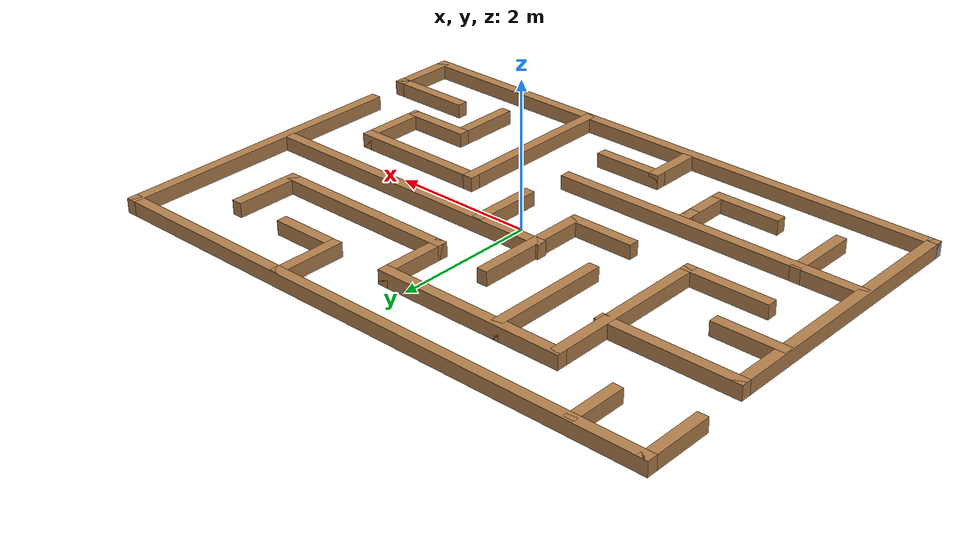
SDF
<?xml version='1.0'?>
<sdf version='1.6'>
  <model name='maze2'>
    <pose frame=''>0.034016 -0.067773 0 0 -0 0</pose>
    <link name='Wall_0'>
      <collision name='Wall_0_Collision'>
        <geometry>
          <box>
            <size>4 0.15 0.20</size>
          </box>
        </geometry>
        <pose frame=''>0 0 0 0 -0 0</pose>
      </collision>
      <visual name='Wall_0_Visual'>
        <pose frame=''>0 0 0 0 -0 0</pose>
        <geometry>
          <box>
            <size>4 0.15 0.20</size>
          </box>
        </geometry>
        <material>
          <script>
            <uri>file://media/materials/scripts/gazebo.material</uri>
            <name>Gazebo/Wood</name>
          </script>
          <ambient>1 1 1 1</ambient>
        </material>
        <meta>
          <layer>0</layer>
        </meta>
      </visual>
      <pose frame=''>-4.01511 -0.824503 0 0 -0 -1.5708</pose>
    </link>
    <link name='Wall_1'>
      <collision name='Wall_1_Collision'>
        <geometry>
          <box>
            <size>0.25 0.15 0.20</size>
          </box>
        </geometry>
        <pose frame=''>0 0 0 0 -0 0</pose>
      </collision>
      <visual name='Wall_1_Visual'>
        <pose frame=''>0 0 0 0 -0 0</pose>
        <geometry>
          <box>
            <size>0.25 0.15 0.20</size>
          </box>
        </geometry>
        <material>
          <script>
            <uri>file://media/materials/scripts/gazebo.material</uri>
            <name>Gazebo/Grey</name>
          </script>
          <ambient>1 1 1 1</ambient>
        </material>
        <meta>
          <layer>0</layer>
        </meta>
      </visual>
      <pose frame=''>-4.01511 -2.7995 0 0 -0 -1.5708</pose>
    </link>
    <link name='Wall_10'>
      <collision name='Wall_10_Collision'>
        <geometry>
          <box>
            <size>0.80 0.15 0.20</size>
          </box>
        </geometry>
        <pose frame=''>0 0 0 0 -0 0</pose>
      </collision>
      <visual name='Wall_10_Visual'>
        <pose frame=''>0 0 0 0 -0 0</pose>
        <geometry>
          <box>
            <size>0.80 0.15 0.20</size>
          </box>
        </geometry>
        <material>
          <script>
            <uri>file://media/materials/scripts/gazebo.material</uri>
            <name>Gazebo/Wood</name>
          </script>
          <ambient>1 1 1 1</ambient>
        </material>
        <meta>
          <layer>0</layer>
        </meta>
      </visual>
      <pose frame=''>-3.11779 2.4245 0 0 -0 -1.5708</pose>
    </link>
    <link name='Wall_12'>
      <collision name='Wall_12_Collision'>
        <geometry>
          <box>
            <size>1 0.15 0.20</size>
          </box>
        </geometry>
        <pose frame=''>0 0 0 0 -0 0</pose>
      </collision>
      <visual name='Wall_12_Visual'>
        <pose frame=''>0 0 0 0 -0 0</pose>
        <geometry>
          <box>
            <size>1 0.15 0.20</size>
          </box>
        </geometry>
        <material>
          <script>
            <uri>file://media/materials/scripts/gazebo.material</uri>
            <name>Gazebo/Wood</name>
          </script>
          <ambient>1 1 1 1</ambient>
        </material>
        <meta>
          <layer>0</layer>
        </meta>
      </visual>
      <pose frame=''>-3.5749 0.294433 0 0 -0 0</pose>
    </link>
    <link name='Wall_131'>
      <collision name='Wall_131_Collision'>
        <geometry>
          <box>
            <size>0.25 0.15 0.20</size>
          </box>
        </geometry>
        <pose frame=''>0 0 0 0 -0 0</pose>
      </collision>
      <visual name='Wall_131_Visual'>
        <pose frame=''>0 0 0 0 -0 0</pose>
        <geometry>
          <box>
            <size>0.25 0.15 0.20</size>
          </box>
        </geometry>
        <material>
          <script>
            <uri>file://media/materials/scripts/gazebo.material</uri>
            <name>Gazebo/Wood</name>
          </script>
          <ambient>1 1 1 1</ambient>
        </material>
        <meta>
          <layer>0</layer>
        </meta>
      </visual>
      <pose frame=''>-1.4161 -1.47376 0 0 -0 1.5708</pose>
    </link>
    <link name='Wall_133'>
      <collision name='Wall_133_Collision'>
        <geometry>
          <box>
            <size>0.75 0.15 0.20</size>
          </box>
        </geometry>
        <pose frame=''>0 0 0 0 -0 0</pose>
      </collision>
      <visual name='Wall_133_Visual'>
        <pose frame=''>0 0 0 0 -0 0</pose>
        <geometry>
          <box>
            <size>0.75 0.15 0.20</size>
          </box>
        </geometry>
        <material>
          <script>
            <uri>file://media/materials/scripts/gazebo.material</uri>
            <name>Gazebo/Wood</name>
          </script>
          <ambient>1 1 1 1</ambient>
        </material>
        <meta>
          <layer>0</layer>
        </meta>
      </visual>
      <pose frame=''>-0.425845 -2.40855 0 0 -0 -1.5708</pose>
    </link>
    <link name='Wall_135'>
      <collision name='Wall_135_Collision'>
        <geometry>
          <box>
            <size>1 0.15 0.20</size>
          </box>
        </geometry>
        <pose frame=''>0 0 0 0 -0 0</pose>
      </collision>
      <visual name='Wall_135_Visual'>
        <pose frame=''>0 0 0 0 -0 0</pose>
        <geometry>
          <box>
            <size>1 0.15 0.20</size>
          </box>
        </geometry>
        <material>
          <script>
            <uri>file://media/materials/scripts/gazebo.material</uri>
            <name>Gazebo/Wood</name>
          </script>
          <ambient>1 1 1 1</ambient>
        </material>
        <meta>
          <layer>0</layer>
        </meta>
      </visual>
      <pose frame=''>-0.000845 -2.10855 0 0 -0 0</pose>
    </link>
    <link name='Wall_137'>
      <collision name='Wall_137_Collision'>
        <geometry>
          <box>
            <size>2.5 0.15 0.20</size>
          </box>
        </geometry>
        <pose frame=''>0 0 0 0 -0 0</pose>
      </collision>
      <visual name='Wall_137_Visual'>
        <pose frame=''>0 0 0 0 -0 0</pose>
        <geometry>
          <box>
            <size>2.5 0.15 0.20</size>
          </box>
        </geometry>
        <material>
          <script>
            <uri>file://media/materials/scripts/gazebo.material</uri>
            <name>Gazebo/Wood</name>
          </script>
          <ambient>1 1 1 1</ambient>
        </material>
        <meta>
          <layer>0</layer>
        </meta>
      </visual>
      <pose frame=''>1.32316 -1.65621 0 0 -0 -1.5708</pose>
    </link>
    <link name='Wall_139'>
      <collision name='Wall_139_Collision'>
        <geometry>
          <box>
            <size>2 0.15 0.20</size>
          </box>
        </geometry>
        <pose frame=''>0 0 0 0 -0 0</pose>
      </collision>
      <visual name='Wall_139_Visual'>
        <pose frame=''>0 0 0 0 -0 0</pose>
        <geometry>
          <box>
            <size>2 0.15 0.20</size>
          </box>
        </geometry>
        <material>
          <script>
            <uri>file://media/materials/scripts/gazebo.material</uri>
            <name>Gazebo/Wood</name>
          </script>
          <ambient>1 1 1 1</ambient>
        </material>
        <meta>
          <layer>0</layer>
        </meta>
      </visual>
      <pose frame=''>2.24816 -0.481213 0 0 -0 0</pose>
    </link>
    <link name='Wall_14'>
      <collision name='Wall_14_Collision'>
        <geometry>
          <box>
            <size>2 0.15 0.20</size>
          </box>
        </geometry>
        <pose frame=''>0 0 0 0 -0 0</pose>
      </collision>
      <visual name='Wall_14_Visual'>
        <pose frame=''>0 0 0 0 -0 0</pose>
        <geometry>
          <box>
            <size>2 0.15 0.20</size>
          </box>
        </geometry>
        <material>
          <script>
            <uri>file://media/materials/scripts/gazebo.material</uri>
            <name>Gazebo/Wood</name>
          </script>
          <ambient>1 1 1 1</ambient>
        </material>
        <meta>
          <layer>0</layer>
        </meta>
      </visual>
      <pose frame=''>-3.09011 1.1005 0 0 -0 0</pose>
    </link>
    <link name='Wall_140'>
      <collision name='Wall_140_Collision'>
        <geometry>
          <box>
            <size>1 0.15 0.20</size>
          </box>
        </geometry>
        <pose frame=''>0 0 0 0 -0 0</pose>
      </collision>
      <visual name='Wall_140_Visual'>
        <pose frame=''>0 0 0 0 -0 0</pose>
        <geometry>
          <box>
            <size>1 0.15 0.20</size>
          </box>
        </geometry>
        <material>
          <script>
            <uri>file://media/materials/scripts/gazebo.material</uri>
            <name>Gazebo/Wood</name>
          </script>
          <ambient>1 1 1 1</ambient>
        </material>
        <meta>
          <layer>0</layer>
        </meta>
      </visual>
      <pose frame=''>3.17316 -0.906213 0 0 -0 -1.5708</pose>
    </link>
    <link name='Wall_141'>
      <collision name='Wall_141_Collision'>
        <geometry>
          <box>
            <size>1 0.15 0.20</size>
          </box>
        </geometry>
        <pose frame=''>0 0 0 0 -0 0</pose>
      </collision>
      <visual name='Wall_141_Visual'>
        <pose frame=''>0 0 0 0 -0 0</pose>
        <geometry>
          <box>
            <size>1 0.15 0.20</size>
          </box>
        </geometry>
        <material>
          <script>
            <uri>file://media/materials/scripts/gazebo.material</uri>
            <name>Gazebo/Wood</name>
          </script>
          <ambient>1 1 1 1</ambient>
        </material>
        <meta>
          <layer>0</layer>
        </meta>
      </visual>
      <pose frame=''>2.74816 -1.33121 0 0 -0 3.14159</pose>
    </link>
    <link name='Wall_142'>
      <collision name='Wall_142_Collision'>
        <geometry>
          <box>
            <size>1 0.15 0.20</size>
          </box>
        </geometry>
        <pose frame=''>0 0 0 0 -0 0</pose>
      </collision>
      <visual name='Wall_142_Visual'>
        <pose frame=''>0 0 0 0 -0 0</pose>
        <geometry>
          <box>
            <size>1 0.15 0.20</size>
          </box>
        </geometry>
        <material>
          <script>
            <uri>file://media/materials/scripts/gazebo.material</uri>
            <name>Gazebo/Wood</name>
          </script>
          <ambient>1 1 1 1</ambient>
        </material>
        <meta>
          <layer>0</layer>
        </meta>
      </visual>
      <pose frame=''>2.32316 -1.75621 0 0 -0 -1.5708</pose>
    </link>
    <link name='Wall_16'>
      <collision name='Wall_16_Collision'>
        <geometry>
          <box>
            <size>2.5 0.15 0.20</size>
          </box>
        </geometry>
        <pose frame=''>0 0 0 0 -0 0</pose>
      </collision>
      <visual name='Wall_16_Visual'>
        <pose frame=''>0 0 0 0 -0 0</pose>
        <geometry>
          <box>
            <size>2.5 0.15 0.20</size>
          </box>
        </geometry>
        <material>
          <script>
            <uri>file://media/materials/scripts/gazebo.material</uri>
            <name>Gazebo/Wood</name>
          </script>
          <ambient>1 1 1 1</ambient>
        </material>
        <meta>
          <layer>0</layer>
        </meta>
      </visual>
      <pose frame=''>-2.20527 0.761978 0 0 -0 -1.5708</pose>
    </link>
    <link name='Wall_17'>
      <collision name='Wall_17_Collision'>
        <geometry>
          <box>
            <size>1.25 0.15 0.20</size>
          </box>
        </geometry>
        <pose frame=''>0 0 0 0 -0 0</pose>
      </collision>
      <visual name='Wall_17_Visual'>
        <pose frame=''>0 0 0 0 -0 0</pose>
        <geometry>
          <box>
            <size>1.25 0.15 0.20</size>
          </box>
        </geometry>
        <material>
          <script>
            <uri>file://media/materials/scripts/gazebo.material</uri>
            <name>Gazebo/Wood</name>
          </script>
          <ambient>1 1 1 1</ambient>
        </material>
        <meta>
          <layer>0</layer>
        </meta>
      </visual>
      <pose frame=''>-2.75527 -0.413022 0 0 -0 3.14159</pose>
    </link>
    <link name='Wall_19'>
      <collision name='Wall_19_Collision'>
        <geometry>
          <box>
            <size>2.75 0.15 0.20</size>
          </box>
        </geometry>
        <pose frame=''>0 0 0 0 -0 0</pose>
      </collision>
      <visual name='Wall_19_Visual'>
        <pose frame=''>0 0 0 0 -0 0</pose>
        <geometry>
          <box>
            <size>2.75 0.15 0.20</size>
          </box>
        </geometry>
        <material>
          <script>
            <uri>file://media/materials/scripts/gazebo.material</uri>
            <name>Gazebo/Wood</name>
          </script>
          <ambient>1 1 1 1</ambient>
        </material>
        <meta>
          <layer>0</layer>
        </meta>
      </visual>
      <pose frame=''>-0.905269 1.93698 0 0 -0 0</pose>
    </link>
    <link name='Wall_2'>
      <collision name='Wall_2_Collision'>
        <geometry>
          <box>
            <size>8.25 0.15 0.20</size>
          </box>
        </geometry>
        <pose frame=''>0 0 0 0 -0 0</pose>
      </collision>
      <visual name='Wall_2_Visual'>
        <pose frame=''>0 0 0 0 -0 0</pose>
        <geometry>
          <box>
            <size>8.25 0.15 0.20</size>
          </box>
        </geometry>
        <material>
          <script>
            <uri>file://media/materials/scripts/gazebo.material</uri>
            <name>Gazebo/Wood</name>
          </script>
          <ambient>1 1 1 1</ambient>
        </material>
        <meta>
          <layer>0</layer>
        </meta>
      </visual>
      <pose frame=''>0.03489 -2.8495 0 0 -0 0</pose>
    </link>
    <link name='Wall_20'>
      <collision name='Wall_20_Collision'>
        <geometry>
          <box>
            <size>1 0.15 0.20</size>
          </box>
        </geometry>
        <pose frame=''>0 0 0 0 -0 0</pose>
      </collision>
      <visual name='Wall_20_Visual'>
        <pose frame=''>0 0 0 0 -0 0</pose>
        <geometry>
          <box>
            <size>1 0.15 0.20</size>
          </box>
        </geometry>
        <material>
          <script>
            <uri>file://media/materials/scripts/gazebo.material</uri>
            <name>Gazebo/Wood</name>
          </script>
          <ambient>1 1 1 1</ambient>
        </material>
        <meta>
          <layer>0</layer>
        </meta>
      </visual>
      <pose frame=''>0.394731 1.51198 0 0 -0 -1.5708</pose>
    </link>
    <link name='Wall_21'>
      <collision name='Wall_21_Collision'>
        <geometry>
          <box>
            <size>2.75 0.15 0.20</size>
          </box>
        </geometry>
        <pose frame=''>0 0 0 0 -0 0</pose>
      </collision>
      <visual name='Wall_21_Visual'>
        <pose frame=''>0 0 0 0 -0 0</pose>
        <geometry>
          <box>
            <size>2.75 0.15 0.20</size>
          </box>
        </geometry>
        <material>
          <script>
            <uri>file://media/materials/scripts/gazebo.material</uri>
            <name>Gazebo/Wood</name>
          </script>
          <ambient>1 1 1 1</ambient>
        </material>
        <meta>
          <layer>0</layer>
        </meta>
      </visual>
      <pose frame=''>1.69473 1.08698 0 0 -0 0</pose>
    </link>
    <link name='Wall_22'>
      <collision name='Wall_22_Collision'>
        <geometry>
          <box>
            <size>1 0.15 0.20</size>
          </box>
        </geometry>
        <pose frame=''>0 0 0 0 -0 0</pose>
      </collision>
      <visual name='Wall_22_Visual'>
        <pose frame=''>0 0 0 0 -0 0</pose>
        <geometry>
          <box>
            <size>1 0.15 0.20</size>
          </box>
        </geometry>
        <material>
          <script>
            <uri>file://media/materials/scripts/gazebo.material</uri>
            <name>Gazebo/Wood</name>
          </script>
          <ambient>1 1 1 1</ambient>
        </material>
        <meta>
          <layer>0</layer>
        </meta>
      </visual>
      <pose frame=''>2.99473 1.51198 0 0 -0 1.5708</pose>
    </link>
    <link name='Wall_24'>
      <collision name='Wall_24_Collision'>
        <geometry>
          <box>
            <size>1 0.15 0.20</size>
          </box>
        </geometry>
        <pose frame=''>0 0 0 0 -0 0</pose>
      </collision>
      <visual name='Wall_24_Visual'>
        <pose frame=''>0 0 0 0 -0 0</pose>
        <geometry>
          <box>
            <size>1 0.15 0.20</size>
          </box>
        </geometry>
        <material>
          <script>
            <uri>file://media/materials/scripts/gazebo.material</uri>
            <name>Gazebo/Wood</name>
          </script>
          <ambient>1 1 1 1</ambient>
        </material>
        <meta>
          <layer>0</layer>
        </meta>
      </visual>
      <pose frame=''>1.32316 2.34846 0 0 -0 -1.5708</pose>
    </link>
    <link name='Wall_25'>
      <collision name='Wall_25_Collision'>
        <geometry>
          <box>
            <size>1 0.15 0.20</size>
          </box>
        </geometry>
        <pose frame=''>0 0 0 0 -0 0</pose>
      </collision>
      <visual name='Wall_25_Visual'>
        <pose frame=''>0 0 0 0 -0 0</pose>
        <geometry>
          <box>
            <size>1 0.15 0.20</size>
          </box>
        </geometry>
        <material>
          <script>
            <uri>file://media/materials/scripts/gazebo.material</uri>
            <name>Gazebo/Wood</name>
          </script>
          <ambient>1 1 1 1</ambient>
        </material>
        <meta>
          <layer>0</layer>
        </meta>
      </visual>
      <pose frame=''>1.74816 1.92346 0 0 -0 0</pose>
    </link>
    <link name='Wall_27'>
      <collision name='Wall_27_Collision'>
        <geometry>
          <box>
            <size>1.75 0.15 0.20</size>
          </box>
        </geometry>
        <pose frame=''>0 0 0 0 -0 0</pose>
      </collision>
      <visual name='Wall_27_Visual'>
        <pose frame=''>0 0 0 0 -0 0</pose>
        <geometry>
          <box>
            <size>1.75 0.15 0.20</size>
          </box>
        </geometry>
        <material>
          <script>
            <uri>file://media/materials/scripts/gazebo.material</uri>
            <name>Gazebo/Wood</name>
          </script>
          <ambient>1 1 1 1</ambient>
        </material>
        <meta>
          <layer>0</layer>
        </meta>
      </visual>
      <pose frame=''>-1.33837 1.13698 0 0 -0 -1.5708</pose>
    </link>
    <link name='Wall_29'>
      <collision name='Wall_29_Collision'>
        <geometry>
          <box>
            <size>1.75 0.15 0.20</size>
          </box>
        </geometry>
        <pose frame=''>0 0 0 0 -0 0</pose>
      </collision>
      <visual name='Wall_29_Visual'>
        <pose frame=''>0 0 0 0 -0 0</pose>
        <geometry>
          <box>
            <size>1.75 0.15 0.20</size>
          </box>
        </geometry>
        <material>
          <script>
            <uri>file://media/materials/scripts/gazebo.material</uri>
            <name>Gazebo/Wood</name>
          </script>
          <ambient>1 1 1 1</ambient>
        </material>
        <meta>
          <layer>0</layer>
        </meta>
      </visual>
      <pose frame=''>-0.441054 0.346123 0 0 -0 -1.5708</pose>
    </link>
    <link name='Wall_3'>
      <collision name='Wall_3_Collision'>
        <geometry>
          <box>
            <size>1 0.15 0.20</size>
          </box>
        </geometry>
        <pose frame=''>0 0 0 0 -0 0</pose>
      </collision>
      <visual name='Wall_3_Visual'>
        <pose frame=''>0 0 0 0 -0 0</pose>
        <geometry>
          <box>
            <size>1 0.15 0.20</size>
          </box>
        </geometry>
        <material>
          <script>
            <uri>file://media/materials/scripts/gazebo.material</uri>
            <name>Gazebo/Wood</name>
          </script>
          <ambient>1 1 1 1</ambient>
        </material>
        <meta>
          <layer>0</layer>
        </meta>
      </visual>
      <pose frame=''>4.08489 -2.4245 0 0 -0 1.5708</pose>
    </link>
    <link name='Wall_30'>
      <collision name='Wall_30_Collision'>
        <geometry>
          <box>
            <size>1 0.15 0.20</size>
          </box>
        </geometry>
        <pose frame=''>0 0 0 0 -0 0</pose>
      </collision>
      <visual name='Wall_30_Visual'>
        <pose frame=''>0 0 0 0 -0 0</pose>
        <geometry>
          <box>
            <size>1 0.15 0.20</size>
          </box>
        </geometry>
        <material>
          <script>
            <uri>file://media/materials/scripts/gazebo.material</uri>
            <name>Gazebo/Wood</name>
          </script>
          <ambient>1 1 1 1</ambient>
        </material>
        <meta>
          <layer>0</layer>
        </meta>
      </visual>
      <pose frame=''>-0.866054 -0.453877 0 0 -0 3.14159</pose>
    </link>
    <link name='Wall_32'>
      <collision name='Wall_32_Collision'>
        <geometry>
          <box>
            <size>4.5 0.15 0.20</size>
          </box>
        </geometry>
        <pose frame=''>0 0 0 0 -0 0</pose>
      </collision>
      <visual name='Wall_32_Visual'>
        <pose frame=''>0 0 0 0 -0 0</pose>
        <geometry>
          <box>
            <size>4.5 0.15 0.20</size>
          </box>
        </geometry>
        <material>
          <script>
            <uri>file://media/materials/scripts/gazebo.material</uri>
            <name>Gazebo/Wood</name>
          </script>
          <ambient>1 1 1 1</ambient>
        </material>
        <meta>
          <layer>0</layer>
        </meta>
      </visual>
      <pose frame=''>1.70353 0.279224 0 0 -0 0</pose>
    </link>
    <link name='Wall_34'>
      <collision name='Wall_34_Collision'>
        <geometry>
          <box>
            <size>1 0.15 0.20</size>
          </box>
        </geometry>
        <pose frame=''>0 0 0 0 -0 0</pose>
      </collision>
      <visual name='Wall_34_Visual'>
        <pose frame=''>0 0 0 0 -0 0</pose>
        <geometry>
          <box>
            <size>1 0.15 0.20</size>
          </box>
        </geometry>
        <material>
          <script>
            <uri>file://media/materials/scripts/gazebo.material</uri>
            <name>Gazebo/Wood</name>
          </script>
          <ambient>1 1 1 1</ambient>
        </material>
        <meta>
          <layer>0</layer>
        </meta>
      </visual>
      <pose frame=''>0.471471 -0.160984 0 0 -0 -1.5708</pose>
    </link>
    <link name='Wall_36'>
      <collision name='Wall_36_Collision'>
        <geometry>
          <box>
            <size>4.5 0.15 0.20</size>
          </box>
        </geometry>
        <pose frame=''>0 0 0 0 -0 0</pose>
      </collision>
      <visual name='Wall_36_Visual'>
        <pose frame=''>0 0 0 0 -0 0</pose>
        <geometry>
          <box>
            <size>4.5 0.15 0.20</size>
          </box>
        </geometry>
        <material>
          <script>
            <uri>file://media/materials/scripts/gazebo.material</uri>
            <name>Gazebo/Wood</name>
          </script>
          <ambient>1 1 1 1</ambient>
        </material>
        <meta>
          <layer>0</layer>
        </meta>
      </visual>
      <pose frame=''>-1.80969 -1.30249 0 0 -0 0</pose>
    </link>
    <link name='Wall_38'>
      <collision name='Wall_38_Collision'>
        <geometry>
          <box>
            <size>1 0.15 0.20</size>
          </box>
        </geometry>
        <pose frame=''>0 0 0 0 -0 0</pose>
      </collision>
      <visual name='Wall_38_Visual'>
        <pose frame=''>0 0 0 0 -0 0</pose>
        <geometry>
          <box>
            <size>1 0.15 0.20</size>
          </box>
        </geometry>
        <material>
          <script>
            <uri>file://media/materials/scripts/gazebo.material</uri>
            <name>Gazebo/Wood</name>
          </script>
          <ambient>1 1 1 1</ambient>
        </material>
        <meta>
          <layer>0</layer>
        </meta>
      </visual>
      <pose frame=''>-3.133 -1.72749 0 0 -0 -1.5708</pose>
    </link>
    <link name='Wall_4'>
      <collision name='Wall_4_Collision'>
        <geometry>
          <box>
            <size>1.25 0.15 0.20</size>
          </box>
        </geometry>
        <pose frame=''>0 0 0 0 -0 0</pose>
      </collision>
      <visual name='Wall_4_Visual'>
        <pose frame=''>0 0 0 0 -0 0</pose>
        <geometry>
          <box>
            <size>1.25 0.15 0.20</size>
          </box>
        </geometry>
        <material>
          <script>
            <uri>file://media/materials/scripts/gazebo.material</uri>
            <name>Gazebo/Wood</name>
          </script>
          <ambient>1 1 1 1</ambient>
        </material>
        <meta>
          <layer>0</layer>
        </meta>
      </visual>
      <pose frame=''>3.53489 -1.9995 0 0 -0 3.14159</pose>
    </link>
    <link name='Wall_40'>
      <collision name='Wall_40_Collision'>
        <geometry>
          <box>
            <size>1 0.15 0.20</size>
          </box>
        </geometry>
        <pose frame=''>0 0 0 0 -0 0</pose>
      </collision>
      <visual name='Wall_40_Visual'>
        <pose frame=''>0 0 0 0 -0 0</pose>
        <geometry>
          <box>
            <size>1 0.15 0.20</size>
          </box>
        </geometry>
        <material>
          <script>
            <uri>file://media/materials/scripts/gazebo.material</uri>
            <name>Gazebo/Wood</name>
          </script>
          <ambient>1 1 1 1</ambient>
        </material>
        <meta>
          <layer>0</layer>
        </meta>
      </visual>
      <pose frame=''>-1.8411 -2.12376 0 0 -0 0</pose>
    </link>
    <link name='Wall_41'>
      <collision name='Wall_41_Collision'>
        <geometry>
          <box>
            <size>0.75 0.15 0.20</size>
          </box>
        </geometry>
        <pose frame=''>0 0 0 0 -0 0</pose>
      </collision>
      <visual name='Wall_41_Visual'>
        <pose frame=''>0 0 0 0 -0 0</pose>
        <geometry>
          <box>
            <size>0.75 0.15 0.20</size>
          </box>
        </geometry>
        <material>
          <script>
            <uri>file://media/materials/scripts/gazebo.material</uri>
            <name>Gazebo/Wood</name>
          </script>
          <ambient>1 1 1 1</ambient>
        </material>
        <meta>
          <layer>0</layer>
        </meta>
      </visual>
      <pose frame=''>-1.4161 -1.82376 0 0 -0 1.5708</pose>
    </link>
    <link name='Wall_6'>
      <collision name='Wall_6_Collision'>
        <geometry>
          <box>
            <size>4.25 0.15 0.20</size>
          </box>
        </geometry>
        <pose frame=''>0 0 0 0 -0 0</pose>
      </collision>
      <visual name='Wall_6_Visual'>
        <pose frame=''>0 0 0 0 -0 0</pose>
        <geometry>
          <box>
            <size>4.25 0.15 0.20</size>
          </box>
        </geometry>
        <material>
          <script>
            <uri>file://media/materials/scripts/gazebo.material</uri>
            <name>Gazebo/Wood</name>
          </script>
          <ambient>1 1 1 1</ambient>
        </material>
        <meta>
          <layer>0</layer>
        </meta>
      </visual>
      <pose frame=''>4.01511 0.732306 0 0 -0 1.5708</pose>
    </link>
    <link name='Wall_7'>
      <collision name='Wall_7_Collision'>
        <geometry>
          <box>
            <size>8.25 0.15 0.20</size>
          </box>
        </geometry>
        <pose frame=''>0 0 0 0 -0 0</pose>
      </collision>
      <visual name='Wall_7_Visual'>
        <pose frame=''>0 0 0 0 -0 0</pose>
        <geometry>
          <box>
            <size>8.25 0.15 0.20</size>
          </box>
        </geometry>
        <material>
          <script>
            <uri>file://media/materials/scripts/gazebo.material</uri>
            <name>Gazebo/Wood</name>
          </script>
          <ambient>1 1 1 1</ambient>
        </material>
        <meta>
          <layer>0</layer>
        </meta>
      </visual>
      <pose frame=''>-0.03489 2.78231 0 0 -0 3.14159</pose>
    </link>
    <link name='Wall_8'>
      <collision name='Wall_8_Collision'>
        <geometry>
          <box>
            <size>1 0.15 0.20</size>
          </box>
        </geometry>
        <pose frame=''>0 0 0 0 -0 0</pose>
      </collision>
      <visual name='Wall_8_Visual'>
        <pose frame=''>0 0 0 0 -0 0</pose>
        <geometry>
          <box>
            <size>1 0.15 0.20</size>
          </box>
        </geometry>
        <material>
          <script>
            <uri>file://media/materials/scripts/gazebo.material</uri>
            <name>Gazebo/Wood</name>
          </script>
          <ambient>1 1 1 1</ambient>
        </material>
        <meta>
          <layer>0</layer>
        </meta>
      </visual>
      <pose frame=''>-4.08489 2.35731 0 0 -0 -1.5708</pose>
    </link>
    <static>1</static>
  </model>
</sdf>
